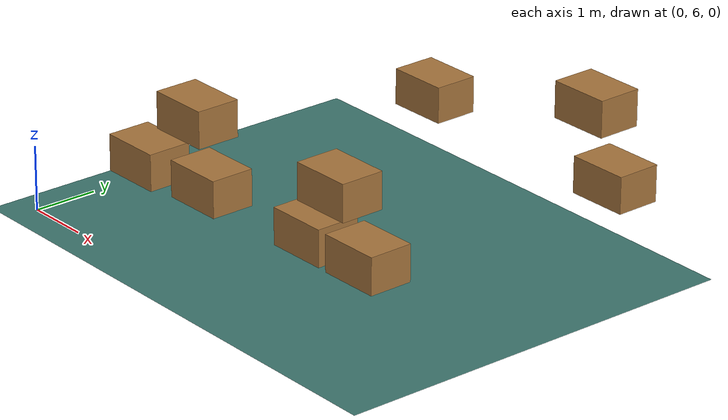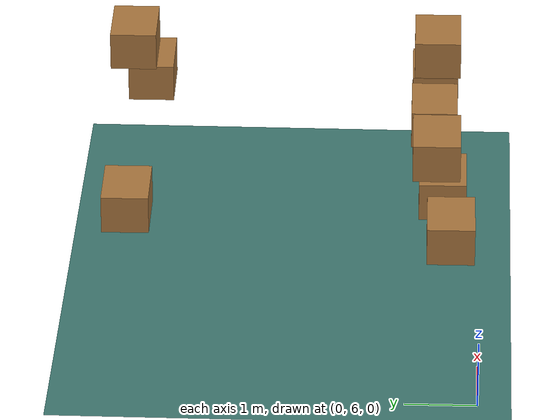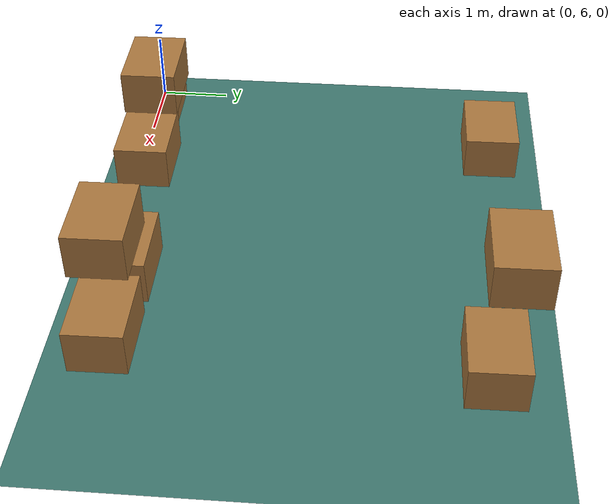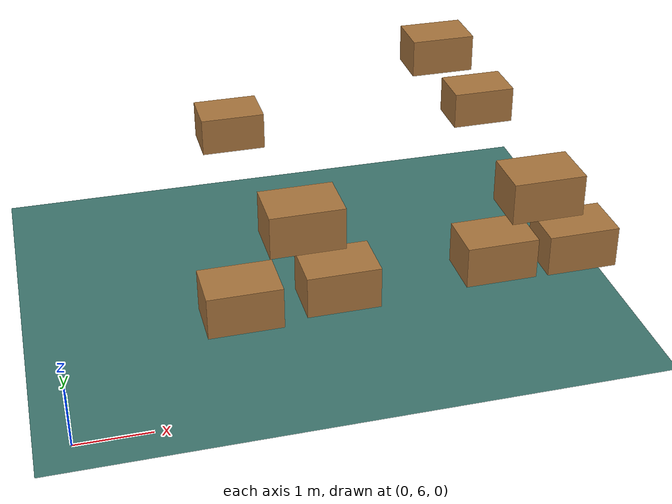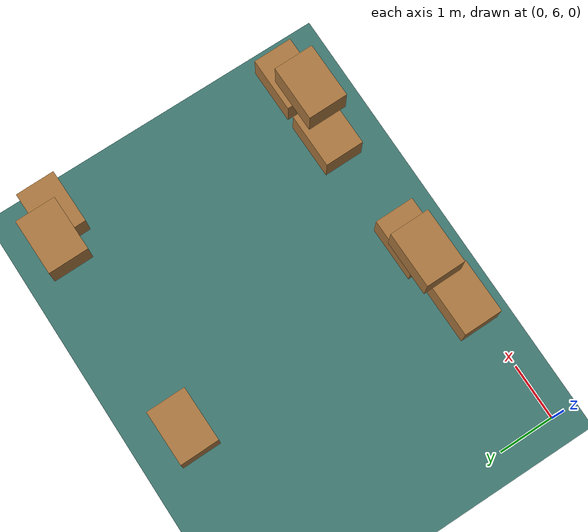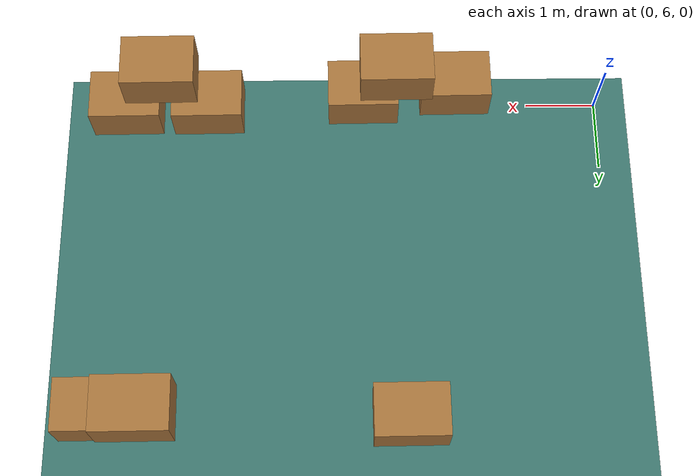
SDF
<sdf version="1.9">
 <world name="fei_lrs_world">
  <plugin filename="gz-sim-physics-system" name="gz::sim::systems::Physics"/>
  <plugin filename="gz-sim-sensors-system" name="gz::sim::systems::Sensors">
   <render_engine>ogre2</render_engine>
  </plugin>
  <plugin filename="gz-sim-user-commands-system" name="gz::sim::systems::UserCommands"/>
  <plugin filename="gz-sim-scene-broadcaster-system" name="gz::sim::systems::SceneBroadcaster"/>
  <plugin filename="gz-sim-imu-system" name="gz::sim::systems::Imu"/>
  <plugin filename="gz-sim-navsat-system" name="gz::sim::systems::NavSat"/>
  <plugin filename="gz-sim-contact-system" name="gz::sim::systems::Contact"/>
  <model name="ground_plane">
   <static>true</static>
   <link name="link">
    <collision name="collision">
     <geometry><plane><normal>0 0 1</normal><size>100 100</size></plane></geometry>
     <surface>
      <contact><collide_bitmask>65535</collide_bitmask></contact>
      <friction><ode><mu>100</mu><mu2>50</mu2></ode></friction>
     </surface>
    </collision>
    <visual name="visual">
     <cast_shadows>false</cast_shadows>
     <geometry><plane><normal>0 0 1</normal><size>100 100</size></plane></geometry>
     <material>
      <ambient>0.12 0.23 0.22 1</ambient>
      <diffuse>0.24 0.46 0.43 1</diffuse>
      <specular>0.04 0.05 0.05 1</specular>
     </material>
    </visual>
   </link>
  </model>
  <light name="sun" type="directional">
   <pose>0 0 10 0 0 0</pose>
   <diffuse>0.800000012 0.800000012 0.800000012 1</diffuse>
   <specular>0.200000003 0.200000003 0.200000003 1</specular>
   <attenuation>
    <range>1000</range>
    <constant>0.90000000000000002</constant>
    <linear>0.01</linear>
    <quadratic>0.001</quadratic>
   </attenuation>
   <direction>-0.5 0.10000000000000001 -0.90000000000000002</direction>
   <spot><inner_angle>0</inner_angle><outer_angle>0</outer_angle><falloff>0</falloff></spot>
  </light>
  <gravity>0 0 -9.8000000000000007</gravity>
  <magnetic_field>6.0000000000000002e-06 2.3e-05 -4.1999999999999998e-05</magnetic_field>
  <atmosphere type="adiabatic"/>
  <physics name="default_physics" default="false" type="ode">
   <max_step_size>0.001</max_step_size>
   <real_time_factor>1</real_time_factor>
   <real_time_update_rate>1000</real_time_update_rate>
  </physics>
  <scene>
   <ambient>0.400000006 0.400000006 0.400000006 1</ambient>
   <background>0.699999988 0.699999988 0.699999988 1</background>
   <shadows>true</shadows>
  </scene>
  <spherical_coordinates>
   <surface_model>EARTH_WGS84</surface_model>
   <latitude_deg>0</latitude_deg>
   <longitude_deg>0</longitude_deg>
   <elevation>0</elevation>
   <heading_deg>0</heading_deg>
  </spherical_coordinates>
  <model name="unit_box_3">
   <pose>6.65 6.68 1.48388 -1.5708 0 0.010066</pose>
   <link name="link">
    <inertial>
     <mass>1</mass>
     <inertia>
      <ixx>0.16666700000000001</ixx>
      <ixy>0</ixy>
      <ixz>0</ixz>
      <iyy>0.16666700000000001</iyy>
      <iyz>0</iyz>
      <izz>0.16666700000000001</izz>
     </inertia>
    </inertial>
    <collision name="collision">
     <geometry><box><size>0.939395 0.555051 0.670682</size></box></geometry>
    </collision>
    <visual name="visual">
     <geometry><box><size>0.939395 0.555051 0.670682</size></box></geometry>
     <material>
      <ambient>0.30 0.20 0.10 1</ambient>
      <diffuse>0.66 0.46 0.24 1</diffuse>
      <specular>0.025 0.02 0.015 1</specular>
     </material>
    </visual>
   </link>
  </model>
  <model name="unit_box_3_clone">
   <pose>5.55389 6.6802700000000002 1.4838800000000001 -1.5708 0 0.010065999999999999</pose>
   <link name="link">
    <inertial>
     <mass>1</mass>
     <inertia>
      <ixx>0.16666700000000001</ixx>
      <ixy>0</ixy>
      <ixz>0</ixz>
      <iyy>0.16666700000000001</iyy>
      <iyz>0</iyz>
      <izz>0.16666700000000001</izz>
     </inertia>
    </inertial>
    <collision name="collision">
     <geometry><box><size>0.93939499999999998 0.55505099999999996 0.670682</size></box></geometry>
    </collision>
    <visual name="visual">
     <geometry><box><size>0.93939499999999998 0.55505099999999996 0.670682</size></box></geometry>
     <material>
      <ambient>0.30 0.20 0.10 1</ambient>
      <diffuse>0.66 0.46 0.24 1</diffuse>
      <specular>0.025 0.02 0.015 1</specular>
     </material>
    </visual>
   </link>
  </model>
  <model name="unit_box_3_clone_0">
   <pose>3.4542700000000002 6.5395200000000004 1.4838800000000001 -1.5708 0 0.010065999999999999</pose>
   <link name="link">
    <inertial>
     <mass>1</mass>
     <inertia>
      <ixx>0.16666700000000001</ixx>
      <ixy>0</ixy>
      <ixz>0</ixz>
      <iyy>0.16666700000000001</iyy>
      <iyz>0</iyz>
      <izz>0.16666700000000001</izz>
     </inertia>
    </inertial>
    <collision name="collision">
     <geometry><box><size>0.93939499999999998 0.55505099999999996 0.670682</size></box></geometry>
    </collision>
    <visual name="visual">
     <geometry><box><size>0.93939499999999998 0.55505099999999996 0.670682</size></box></geometry>
     <material>
      <ambient>0.30 0.20 0.10 1</ambient>
      <diffuse>0.66 0.46 0.24 1</diffuse>
      <specular>0.025 0.02 0.015 1</specular>
     </material>
    </visual>
   </link>
  </model>
  <model name="unit_box_3_clone_1">
   <pose>2.2046199999999998 6.4101400000000002 1.4838800000000001 -1.5708 0 0.010065999999999999</pose>
   <link name="link">
    <inertial>
     <mass>1</mass>
     <inertia>
      <ixx>0.16666700000000001</ixx>
      <ixy>0</ixy>
      <ixz>0</ixz>
      <iyy>0.16666700000000001</iyy>
      <iyz>0</iyz>
      <izz>0.16666700000000001</izz>
     </inertia>
    </inertial>
    <collision name="collision">
     <geometry><box><size>0.93939499999999998 0.55505099999999996 0.670682</size></box></geometry>
    </collision>
    <visual name="visual">
     <geometry><box><size>0.93939499999999998 0.55505099999999996 0.670682</size></box></geometry>
     <material>
      <ambient>0.30 0.20 0.10 1</ambient>
      <diffuse>0.66 0.46 0.24 1</diffuse>
      <specular>0.025 0.02 0.015 1</specular>
     </material>
    </visual>
   </link>
  </model>
  <model name="unit_box_3_clone_2">
   <pose>6.8357999999999999 10.918100000000001 1.4838800000000001 -1.5708 0 0.010065999999999999</pose>
   <link name="link">
    <inertial>
     <mass>1</mass>
     <inertia>
      <ixx>0.16666700000000001</ixx>
      <ixy>0</ixy>
      <ixz>0</ixz>
      <iyy>0.16666700000000001</iyy>
      <iyz>0</iyz>
      <izz>0.16666700000000001</izz>
     </inertia>
    </inertial>
    <collision name="collision">
     <geometry><box><size>0.93939499999999998 0.55505099999999996 0.670682</size></box></geometry>
    </collision>
    <visual name="visual">
     <geometry><box><size>0.93939499999999998 0.55505099999999996 0.670682</size></box></geometry>
     <material>
      <ambient>0.30 0.20 0.10 1</ambient>
      <diffuse>0.66 0.46 0.24 1</diffuse>
      <specular>0.025 0.02 0.015 1</specular>
     </material>
    </visual>
   </link>
  </model>
  <model name="unit_box_3_clone_3">
   <pose>2.9075199999999999 11.014200000000001 1.4838800000000001 -1.5708 0 0.010065999999999999</pose>
   <link name="link">
    <inertial>
     <mass>1</mass>
     <inertia>
      <ixx>0.16666700000000001</ixx>
      <ixy>0</ixy>
      <ixz>0</ixz>
      <iyy>0.16666700000000001</iyy>
      <iyz>0</iyz>
      <izz>0.16666700000000001</izz>
     </inertia>
    </inertial>
    <collision name="collision">
     <geometry><box><size>0.93939499999999998 0.55505099999999996 0.670682</size></box></geometry>
    </collision>
    <visual name="visual">
     <geometry><box><size>0.93939499999999998 0.55505099999999996 0.670682</size></box></geometry>
     <material>
      <ambient>0.30 0.20 0.10 1</ambient>
      <diffuse>0.66 0.46 0.24 1</diffuse>
      <specular>0.025 0.02 0.015 1</specular>
     </material>
    </visual>
   </link>
  </model>
  <model name="unit_box_3_clone_4">
   <pose>6.1 6.65 2.34249 -1.5708 0 0.010066</pose>
   <link name="link">
    <inertial>
     <mass>1</mass>
     <inertia>
      <ixx>0.16666700000000001</ixx>
      <ixy>0</ixy>
      <ixz>0</ixz>
      <iyy>0.16666700000000001</iyy>
      <iyz>0</iyz>
      <izz>0.16666700000000001</izz>
     </inertia>
    </inertial>
    <collision name="collision">
     <geometry><box><size>0.93939499999999998 0.55505099999999996 0.670682</size></box></geometry>
    </collision>
    <visual name="visual">
     <geometry><box><size>0.93939499999999998 0.55505099999999996 0.670682</size></box></geometry>
     <material>
      <ambient>0.30 0.20 0.10 1</ambient>
      <diffuse>0.66 0.46 0.24 1</diffuse>
      <specular>0.025 0.02 0.015 1</specular>
     </material>
    </visual>
   </link>
  </model>
  <model name="unit_box_3_clone_4_clone">
   <pose>6.1999199999999997 11.122 2.3424900000000002 -1.5708 0 0.010065999999999999</pose>
   <link name="link">
    <inertial>
     <mass>1</mass>
     <inertia>
      <ixx>0.16666700000000001</ixx>
      <ixy>0</ixy>
      <ixz>0</ixz>
      <iyy>0.16666700000000001</iyy>
      <iyz>0</iyz>
      <izz>0.16666700000000001</izz>
     </inertia>
    </inertial>
    <collision name="collision">
     <geometry><box><size>0.93939499999999998 0.55505099999999996 0.670682</size></box></geometry>
    </collision>
    <visual name="visual">
     <geometry><box><size>0.93939499999999998 0.55505099999999996 0.670682</size></box></geometry>
     <material>
      <ambient>0.30 0.20 0.10 1</ambient>
      <diffuse>0.66 0.46 0.24 1</diffuse>
      <specular>0.025 0.02 0.015 1</specular>
     </material>
    </visual>
   </link>
  </model>
  <model name="unit_box_3_clone_4_clone_0">
   <pose>3.0290599999999999 6.6333299999999999 2.3424900000000002 -1.5708 0 0.010065999999999999</pose>
   <link name="link">
    <inertial>
     <mass>1</mass>
     <inertia>
      <ixx>0.16666700000000001</ixx>
      <ixy>0</ixy>
      <ixz>0</ixz>
      <iyy>0.16666700000000001</iyy>
      <iyz>0</iyz>
      <izz>0.16666700000000001</izz>
     </inertia>
    </inertial>
    <collision name="collision">
     <geometry><box><size>0.93939499999999998 0.55505099999999996 0.670682</size></box></geometry>
    </collision>
    <visual name="visual">
     <geometry><box><size>0.93939499999999998 0.55505099999999996 0.670682</size></box></geometry>
     <material>
      <ambient>0.30 0.20 0.10 1</ambient>
      <diffuse>0.66 0.46 0.24 1</diffuse>
      <specular>0.025 0.02 0.015 1</specular>
     </material>
    </visual>
   </link>
  </model>
 </world>
</sdf>
